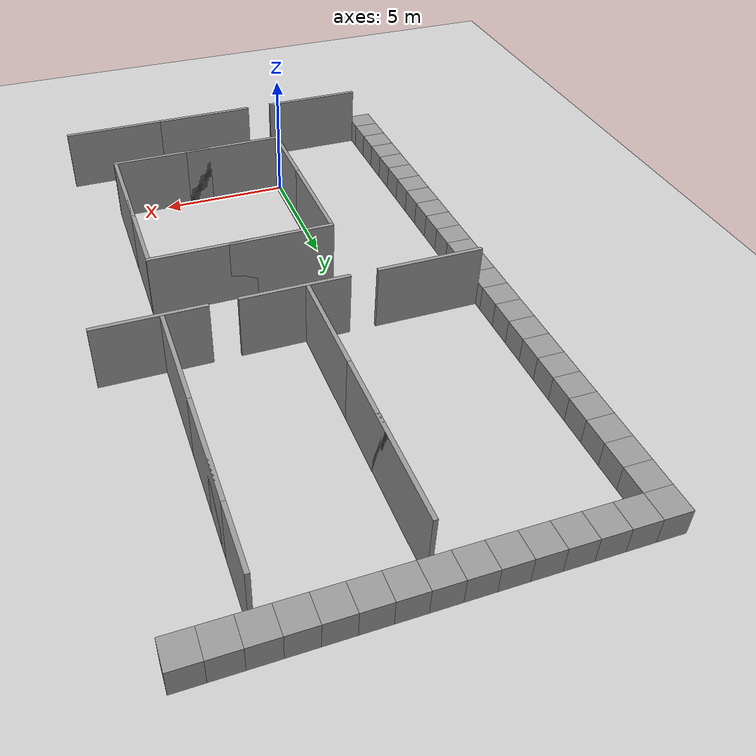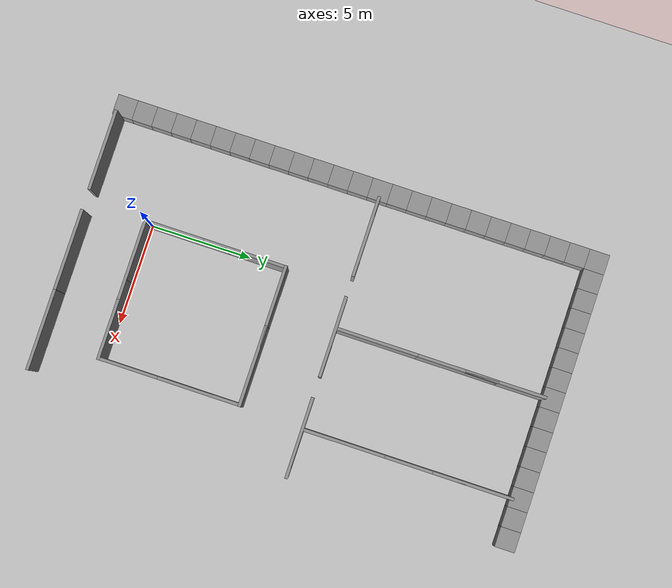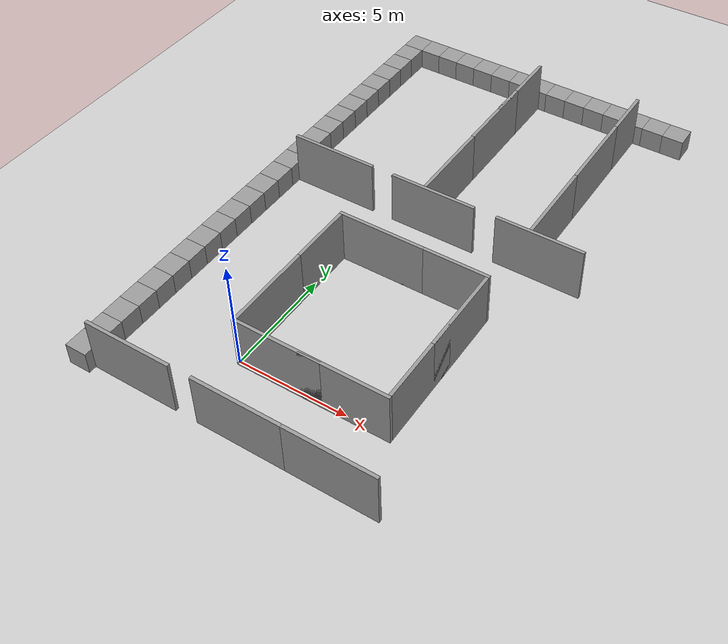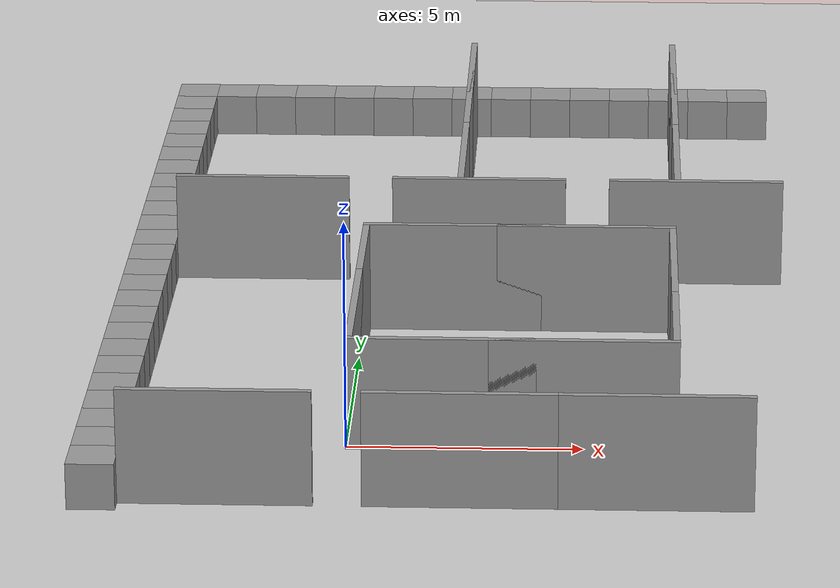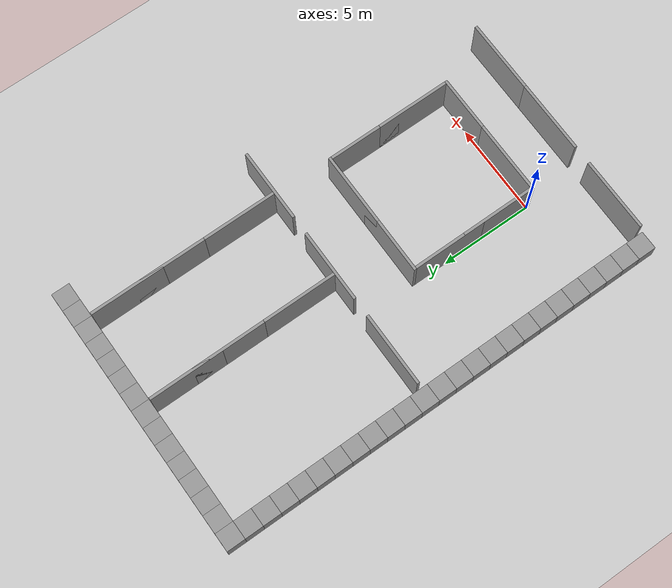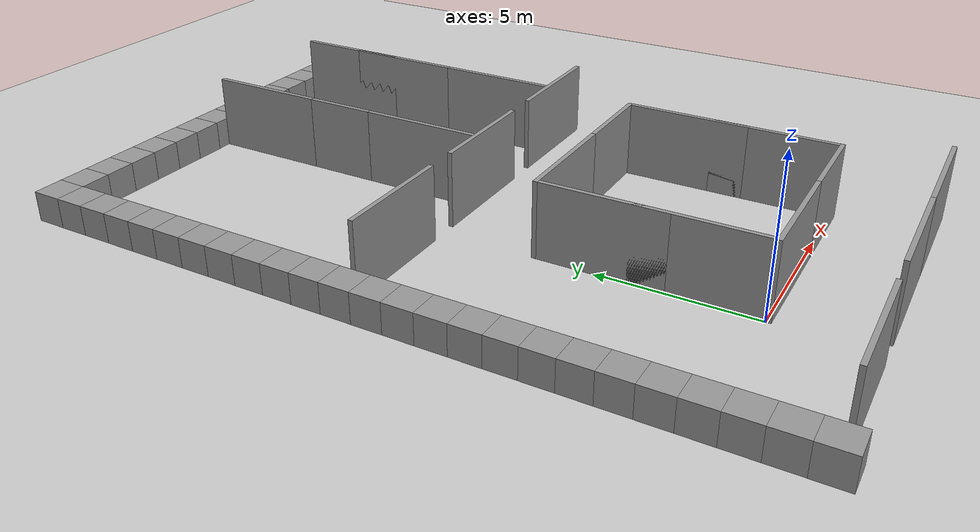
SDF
<sdf version="1.6">
 <world name="default">
  <model name="ground_plane">
   <static>1</static>
   <link name="link">
    <collision name="collision">
     <geometry><plane><normal>0 0 1</normal><size>100 100</size></plane></geometry>
     <surface><friction><ode><mu>100</mu><mu2>50</mu2></ode></friction></surface>
    </collision>
    <visual name="visual">
     <cast_shadows>0</cast_shadows>
     <geometry><plane><normal>0 0 1</normal><size>100 100</size></plane></geometry>
     <material>
      <script><uri>file://media/materials/scripts/gazebo.material</uri><name>Gazebo/Grey</name></script>
     </material>
    </visual>
    <velocity_decay><linear>0</linear><angular>0</angular></velocity_decay>
   </link>
  </model>
  <model name="unit_box_1">
   <pose>-5.0 5.0 0.5 0 0 0</pose>
   <static>1</static>
   <link name="link">
    <inertial>
     <mass>1</mass>
     <inertia><ixx>1</ixx><ixy>0</ixy><ixz>0</ixz><iyy>1</iyy><iyz>0</iyz><izz>1</izz></inertia>
    </inertial>
    <collision name="collision"><geometry><box><size>1 1 1</size></box></geometry></collision>
    <visual name="visual">
     <geometry><box><size>1 1 1</size></box></geometry>
     <material>
      <script><uri>file://media/materials/scripts/gazebo.material</uri><name>Gazebo/Grey</name></script>
     </material>
    </visual>
    <velocity_decay><linear>0</linear><angular>0</angular></velocity_decay>
   </link>
   <static>1</static>
  </model>
  <model name="unit_box_40">
   <pose>-5 4 0.5 0 0 0</pose>
   <static>1</static>
   <link name="link">
    <inertial>
     <mass>1</mass>
     <inertia><ixx>1</ixx><ixy>0</ixy><ixz>0</ixz><iyy>1</iyy><iyz>0</iyz><izz>1</izz></inertia>
    </inertial>
    <collision name="collision"><geometry><box><size>1 1 1</size></box></geometry></collision>
    <visual name="visual">
     <geometry><box><size>1 1 1</size></box></geometry>
     <material>
      <script><uri>file://media/materials/scripts/gazebo.material</uri><name>Gazebo/Grey</name></script>
     </material>
    </visual>
    <velocity_decay><linear>0</linear><angular>0</angular></velocity_decay>
   </link>
   <static>1</static>
  </model>
  <model name="unit_box_41">
   <pose>-5 3 0.5 0 0 0</pose>
   <static>1</static>
   <link name="link">
    <inertial>
     <mass>1</mass>
     <inertia><ixx>1</ixx><ixy>0</ixy><ixz>0</ixz><iyy>1</iyy><iyz>0</iyz><izz>1</izz></inertia>
    </inertial>
    <collision name="collision"><geometry><box><size>1 1 1</size></box></geometry></collision>
    <visual name="visual">
     <geometry><box><size>1 1 1</size></box></geometry>
     <material>
      <script><uri>file://media/materials/scripts/gazebo.material</uri><name>Gazebo/Grey</name></script>
     </material>
    </visual>
    <velocity_decay><linear>0</linear><angular>0</angular></velocity_decay>
   </link>
   <static>1</static>
  </model>
  <model name="unit_box_42">
   <pose>-5 2 0.5 0 0 0</pose>
   <static>1</static>
   <link name="link">
    <inertial>
     <mass>1</mass>
     <inertia><ixx>1</ixx><ixy>0</ixy><ixz>0</ixz><iyy>1</iyy><iyz>0</iyz><izz>1</izz></inertia>
    </inertial>
    <collision name="collision"><geometry><box><size>1 1 1</size></box></geometry></collision>
    <visual name="visual">
     <geometry><box><size>1 1 1</size></box></geometry>
     <material>
      <script><uri>file://media/materials/scripts/gazebo.material</uri><name>Gazebo/Grey</name></script>
     </material>
    </visual>
    <velocity_decay><linear>0</linear><angular>0</angular></velocity_decay>
   </link>
   <static>1</static>
  </model>
  <model name="unit_box_43">
   <pose>-5 1 0.5 0 0 0</pose>
   <static>1</static>
   <link name="link">
    <inertial>
     <mass>1</mass>
     <inertia><ixx>1</ixx><ixy>0</ixy><ixz>0</ixz><iyy>1</iyy><iyz>0</iyz><izz>1</izz></inertia>
    </inertial>
    <collision name="collision"><geometry><box><size>1 1 1</size></box></geometry></collision>
    <visual name="visual">
     <geometry><box><size>1 1 1</size></box></geometry>
     <material>
      <script><uri>file://media/materials/scripts/gazebo.material</uri><name>Gazebo/Grey</name></script>
     </material>
    </visual>
    <velocity_decay><linear>0</linear><angular>0</angular></velocity_decay>
   </link>
   <static>1</static>
  </model>
  <model name="unit_box_44">
   <pose>-5 0 0.5 0 0 0</pose>
   <static>1</static>
   <link name="link">
    <inertial>
     <mass>1</mass>
     <inertia><ixx>1</ixx><ixy>0</ixy><ixz>0</ixz><iyy>1</iyy><iyz>0</iyz><izz>1</izz></inertia>
    </inertial>
    <collision name="collision"><geometry><box><size>1 1 1</size></box></geometry></collision>
    <visual name="visual">
     <geometry><box><size>1 1 1</size></box></geometry>
     <material>
      <script><uri>file://media/materials/scripts/gazebo.material</uri><name>Gazebo/Grey</name></script>
     </material>
    </visual>
    <velocity_decay><linear>0</linear><angular>0</angular></velocity_decay>
   </link>
   <static>1</static>
  </model>
  <model name="unit_box_45">
   <pose>-5 -1 0.5 0 0 0</pose>
   <static>1</static>
   <link name="link">
    <inertial>
     <mass>1</mass>
     <inertia><ixx>1</ixx><ixy>0</ixy><ixz>0</ixz><iyy>1</iyy><iyz>0</iyz><izz>1</izz></inertia>
    </inertial>
    <collision name="collision"><geometry><box><size>1 1 1</size></box></geometry></collision>
    <visual name="visual">
     <geometry><box><size>1 1 1</size></box></geometry>
     <material>
      <script><uri>file://media/materials/scripts/gazebo.material</uri><name>Gazebo/Grey</name></script>
     </material>
    </visual>
    <velocity_decay><linear>0</linear><angular>0</angular></velocity_decay>
   </link>
   <static>1</static>
  </model>
  <model name="unit_box_46">
   <pose>-5 -2 0.5 0 0 0</pose>
   <static>1</static>
   <link name="link">
    <inertial>
     <mass>1</mass>
     <inertia><ixx>1</ixx><ixy>0</ixy><ixz>0</ixz><iyy>1</iyy><iyz>0</iyz><izz>1</izz></inertia>
    </inertial>
    <collision name="collision"><geometry><box><size>1 1 1</size></box></geometry></collision>
    <visual name="visual">
     <geometry><box><size>1 1 1</size></box></geometry>
     <material>
      <script><uri>file://media/materials/scripts/gazebo.material</uri><name>Gazebo/Grey</name></script>
     </material>
    </visual>
    <velocity_decay><linear>0</linear><angular>0</angular></velocity_decay>
   </link>
   <static>1</static>
  </model>
  <model name="unit_box_47">
   <pose>-5 -3 0.5 0 0 0</pose>
   <static>1</static>
   <link name="link">
    <inertial>
     <mass>1</mass>
     <inertia><ixx>1</ixx><ixy>0</ixy><ixz>0</ixz><iyy>1</iyy><iyz>0</iyz><izz>1</izz></inertia>
    </inertial>
    <collision name="collision"><geometry><box><size>1 1 1</size></box></geometry></collision>
    <visual name="visual">
     <geometry><box><size>1 1 1</size></box></geometry>
     <material>
      <script><uri>file://media/materials/scripts/gazebo.material</uri><name>Gazebo/Grey</name></script>
     </material>
    </visual>
    <velocity_decay><linear>0</linear><angular>0</angular></velocity_decay>
   </link>
   <static>1</static>
  </model>
  <model name="unit_box_61">
   <pose>-5 6 0.5 0 0 0</pose>
   <static>1</static>
   <link name="link">
    <inertial>
     <mass>1</mass>
     <inertia><ixx>1</ixx><ixy>0</ixy><ixz>0</ixz><iyy>1</iyy><iyz>0</iyz><izz>1</izz></inertia>
    </inertial>
    <collision name="collision"><geometry><box><size>1 1 1</size></box></geometry></collision>
    <visual name="visual">
     <geometry><box><size>1 1 1</size></box></geometry>
     <material>
      <script><uri>file://media/materials/scripts/gazebo.material</uri><name>Gazebo/Grey</name></script>
     </material>
    </visual>
    <velocity_decay><linear>0</linear><angular>0</angular></velocity_decay>
   </link>
   <static>1</static>
  </model>
  <model name="unit_box_67">
   <pose>-5 7 0.5 0 0 0</pose>
   <static>1</static>
   <link name="link">
    <inertial>
     <mass>1</mass>
     <inertia><ixx>1</ixx><ixy>0</ixy><ixz>0</ixz><iyy>1</iyy><iyz>0</iyz><izz>1</izz></inertia>
    </inertial>
    <collision name="collision"><geometry><box><size>1 1 1</size></box></geometry></collision>
    <visual name="visual">
     <geometry><box><size>1 1 1</size></box></geometry>
     <material>
      <script><uri>file://media/materials/scripts/gazebo.material</uri><name>Gazebo/Grey</name></script>
     </material>
    </visual>
    <velocity_decay><linear>0</linear><angular>0</angular></velocity_decay>
   </link>
   <static>1</static>
  </model>
  <model name="unit_box_68">
   <pose>-5.00001 7.99999 0.5 0 0 8e-06</pose>
   <static>1</static>
   <link name="link">
    <inertial>
     <mass>1</mass>
     <inertia><ixx>1</ixx><ixy>0</ixy><ixz>0</ixz><iyy>1</iyy><iyz>0</iyz><izz>1</izz></inertia>
    </inertial>
    <collision name="collision"><geometry><box><size>1 1 1</size></box></geometry></collision>
    <visual name="visual">
     <geometry><box><size>1 1 1</size></box></geometry>
     <material>
      <script><uri>file://media/materials/scripts/gazebo.material</uri><name>Gazebo/Grey</name></script>
     </material>
    </visual>
    <velocity_decay><linear>0</linear><angular>0</angular></velocity_decay>
   </link>
   <static>1</static>
  </model>
  <model name="unit_box_69">
   <pose>-5 8.99999 0.5 0 0 7e-06</pose>
   <static>1</static>
   <link name="link">
    <inertial>
     <mass>1</mass>
     <inertia><ixx>1</ixx><ixy>0</ixy><ixz>0</ixz><iyy>1</iyy><iyz>0</iyz><izz>1</izz></inertia>
    </inertial>
    <collision name="collision"><geometry><box><size>1 1 1</size></box></geometry></collision>
    <visual name="visual">
     <geometry><box><size>1 1 1</size></box></geometry>
     <material>
      <script><uri>file://media/materials/scripts/gazebo.material</uri><name>Gazebo/Grey</name></script>
     </material>
    </visual>
    <velocity_decay><linear>0</linear><angular>0</angular></velocity_decay>
   </link>
   <static>1</static>
  </model>
  <model name="unit_box_72">
   <pose>-5 10 0.5 0 0 0</pose>
   <static>1</static>
   <link name="link">
    <inertial>
     <mass>1</mass>
     <inertia><ixx>1</ixx><ixy>0</ixy><ixz>0</ixz><iyy>1</iyy><iyz>0</iyz><izz>1</izz></inertia>
    </inertial>
    <collision name="collision"><geometry><box><size>1 1 1</size></box></geometry></collision>
    <visual name="visual">
     <geometry><box><size>1 1 1</size></box></geometry>
     <material>
      <script><uri>file://media/materials/scripts/gazebo.material</uri><name>Gazebo/Grey</name></script>
     </material>
    </visual>
    <velocity_decay><linear>0</linear><angular>0</angular></velocity_decay>
   </link>
   <static>1</static>
  </model>
  <model name="unit_box_73">
   <pose>-5 11 0.5 0 0 0</pose>
   <static>1</static>
   <link name="link">
    <inertial>
     <mass>1</mass>
     <inertia><ixx>1</ixx><ixy>0</ixy><ixz>0</ixz><iyy>1</iyy><iyz>0</iyz><izz>1</izz></inertia>
    </inertial>
    <collision name="collision"><geometry><box><size>1 1 1</size></box></geometry></collision>
    <visual name="visual">
     <geometry><box><size>1 1 1</size></box></geometry>
     <material>
      <script><uri>file://media/materials/scripts/gazebo.material</uri><name>Gazebo/Grey</name></script>
     </material>
    </visual>
    <velocity_decay><linear>0</linear><angular>0</angular></velocity_decay>
   </link>
   <static>1</static>
  </model>
  <model name="unit_box_74">
   <pose>-5.00001 12 0.5 0 0 8e-06</pose>
   <static>1</static>
   <link name="link">
    <inertial>
     <mass>1</mass>
     <inertia><ixx>1</ixx><ixy>0</ixy><ixz>0</ixz><iyy>1</iyy><iyz>0</iyz><izz>1</izz></inertia>
    </inertial>
    <collision name="collision"><geometry><box><size>1 1 1</size></box></geometry></collision>
    <visual name="visual">
     <geometry><box><size>1 1 1</size></box></geometry>
     <material>
      <script><uri>file://media/materials/scripts/gazebo.material</uri><name>Gazebo/Grey</name></script>
     </material>
    </visual>
    <velocity_decay><linear>0</linear><angular>0</angular></velocity_decay>
   </link>
   <static>1</static>
  </model>
  <model name="unit_box_75">
   <pose>-5 13 0.5 0 0 5e-06</pose>
   <static>1</static>
   <link name="link">
    <inertial>
     <mass>1</mass>
     <inertia><ixx>1</ixx><ixy>0</ixy><ixz>0</ixz><iyy>1</iyy><iyz>0</iyz><izz>1</izz></inertia>
    </inertial>
    <collision name="collision"><geometry><box><size>1 1 1</size></box></geometry></collision>
    <visual name="visual">
     <geometry><box><size>1 1 1</size></box></geometry>
     <material>
      <script><uri>file://media/materials/scripts/gazebo.material</uri><name>Gazebo/Grey</name></script>
     </material>
    </visual>
    <velocity_decay><linear>0</linear><angular>0</angular></velocity_decay>
   </link>
   <static>1</static>
  </model>
  <model name="unit_box_76">
   <pose>-5 14 0.5 0 0 6e-06</pose>
   <static>1</static>
   <link name="link">
    <inertial>
     <mass>1</mass>
     <inertia><ixx>1</ixx><ixy>0</ixy><ixz>0</ixz><iyy>1</iyy><iyz>0</iyz><izz>1</izz></inertia>
    </inertial>
    <collision name="collision"><geometry><box><size>1 1 1</size></box></geometry></collision>
    <visual name="visual">
     <geometry><box><size>1 1 1</size></box></geometry>
     <material>
      <script><uri>file://media/materials/scripts/gazebo.material</uri><name>Gazebo/Grey</name></script>
     </material>
    </visual>
    <velocity_decay><linear>0</linear><angular>0</angular></velocity_decay>
   </link>
   <static>1</static>
  </model>
  <model name="unit_box_77">
   <pose>-4.99999 15 0.5 0 0 7e-06</pose>
   <static>1</static>
   <link name="link">
    <inertial>
     <mass>1</mass>
     <inertia><ixx>1</ixx><ixy>0</ixy><ixz>0</ixz><iyy>1</iyy><iyz>0</iyz><izz>1</izz></inertia>
    </inertial>
    <collision name="collision"><geometry><box><size>1 1 1</size></box></geometry></collision>
    <visual name="visual">
     <geometry><box><size>1 1 1</size></box></geometry>
     <material>
      <script><uri>file://media/materials/scripts/gazebo.material</uri><name>Gazebo/Grey</name></script>
     </material>
    </visual>
    <velocity_decay><linear>0</linear><angular>0</angular></velocity_decay>
   </link>
   <static>1</static>
  </model>
  <model name="unit_box_78">
   <pose>-5 16 0.5 0 0 7e-06</pose>
   <static>1</static>
   <link name="link">
    <inertial>
     <mass>1</mass>
     <inertia><ixx>1</ixx><ixy>0</ixy><ixz>0</ixz><iyy>1</iyy><iyz>0</iyz><izz>1</izz></inertia>
    </inertial>
    <collision name="collision"><geometry><box><size>1 1 1</size></box></geometry></collision>
    <visual name="visual">
     <geometry><box><size>1 1 1</size></box></geometry>
     <material>
      <script><uri>file://media/materials/scripts/gazebo.material</uri><name>Gazebo/Grey</name></script>
     </material>
    </visual>
    <velocity_decay><linear>0</linear><angular>0</angular></velocity_decay>
   </link>
   <static>1</static>
  </model>
  <model name="unit_box_79">
   <pose>-4.99997 17 0.5 0 0 6e-06</pose>
   <static>1</static>
   <link name="link">
    <inertial>
     <mass>1</mass>
     <inertia><ixx>1</ixx><ixy>0</ixy><ixz>0</ixz><iyy>1</iyy><iyz>0</iyz><izz>1</izz></inertia>
    </inertial>
    <collision name="collision"><geometry><box><size>1 1 1</size></box></geometry></collision>
    <visual name="visual">
     <geometry><box><size>1 1 1</size></box></geometry>
     <material>
      <script><uri>file://media/materials/scripts/gazebo.material</uri><name>Gazebo/Grey</name></script>
     </material>
    </visual>
    <velocity_decay><linear>0</linear><angular>0</angular></velocity_decay>
   </link>
   <static>1</static>
  </model>
  <model name="unit_box_80">
   <pose>-5 18 0.5 0 0 0</pose>
   <static>1</static>
   <link name="link">
    <inertial>
     <mass>1</mass>
     <inertia><ixx>1</ixx><ixy>0</ixy><ixz>0</ixz><iyy>1</iyy><iyz>0</iyz><izz>1</izz></inertia>
    </inertial>
    <collision name="collision"><geometry><box><size>1 1 1</size></box></geometry></collision>
    <visual name="visual">
     <geometry><box><size>1 1 1</size></box></geometry>
     <material>
      <script><uri>file://media/materials/scripts/gazebo.material</uri><name>Gazebo/Grey</name></script>
     </material>
    </visual>
    <velocity_decay><linear>0</linear><angular>0</angular></velocity_decay>
   </link>
   <static>1</static>
  </model>
  <model name="unit_box_96">
   <pose>-5 19 0.5 0 0 0</pose>
   <static>1</static>
   <link name="link">
    <inertial>
     <mass>1</mass>
     <inertia><ixx>1</ixx><ixy>0</ixy><ixz>0</ixz><iyy>1</iyy><iyz>0</iyz><izz>1</izz></inertia>
    </inertial>
    <collision name="collision"><geometry><box><size>1 1 1</size></box></geometry></collision>
    <visual name="visual">
     <geometry><box><size>1 1 1</size></box></geometry>
     <material>
      <script><uri>file://media/materials/scripts/gazebo.material</uri><name>Gazebo/Grey</name></script>
     </material>
    </visual>
    <velocity_decay><linear>0</linear><angular>0</angular></velocity_decay>
   </link>
   <static>1</static>
  </model>
  <model name="unit_box_97">
   <pose>-4.99997 20 0.5 0 0 1e-06</pose>
   <static>1</static>
   <link name="link">
    <inertial>
     <mass>1</mass>
     <inertia><ixx>1</ixx><ixy>0</ixy><ixz>0</ixz><iyy>1</iyy><iyz>0</iyz><izz>1</izz></inertia>
    </inertial>
    <collision name="collision"><geometry><box><size>1 1 1</size></box></geometry></collision>
    <visual name="visual">
     <geometry><box><size>1 1 1</size></box></geometry>
     <material>
      <script><uri>file://media/materials/scripts/gazebo.material</uri><name>Gazebo/Grey</name></script>
     </material>
    </visual>
    <velocity_decay><linear>0</linear><angular>0</angular></velocity_decay>
   </link>
   <static>1</static>
  </model>
  <model name="unit_box_98">
   <pose>-5.00001 21 0.5 0 0 0</pose>
   <static>1</static>
   <link name="link">
    <inertial>
     <mass>1</mass>
     <inertia><ixx>1</ixx><ixy>0</ixy><ixz>0</ixz><iyy>1</iyy><iyz>0</iyz><izz>1</izz></inertia>
    </inertial>
    <collision name="collision"><geometry><box><size>1 1 1</size></box></geometry></collision>
    <visual name="visual">
     <geometry><box><size>1 1 1</size></box></geometry>
     <material>
      <script><uri>file://media/materials/scripts/gazebo.material</uri><name>Gazebo/Grey</name></script>
     </material>
    </visual>
    <velocity_decay><linear>0</linear><angular>0</angular></velocity_decay>
   </link>
   <static>1</static>
  </model>
  <model name="unit_box_99">
   <pose>-4.00001 21 0.5 0 0 -1e-06</pose>
   <static>1</static>
   <link name="link">
    <inertial>
     <mass>1</mass>
     <inertia><ixx>1</ixx><ixy>0</ixy><ixz>0</ixz><iyy>1</iyy><iyz>0</iyz><izz>1</izz></inertia>
    </inertial>
    <collision name="collision"><geometry><box><size>1 1 1</size></box></geometry></collision>
    <visual name="visual">
     <geometry><box><size>1 1 1</size></box></geometry>
     <material>
      <script><uri>file://media/materials/scripts/gazebo.material</uri><name>Gazebo/Grey</name></script>
     </material>
    </visual>
    <velocity_decay><linear>0</linear><angular>0</angular></velocity_decay>
   </link>
   <static>1</static>
  </model>
  <model name="unit_box_100">
   <pose>-3.0 21 0.5 0 0 0</pose>
   <static>1</static>
   <link name="link">
    <inertial>
     <mass>1</mass>
     <inertia><ixx>1</ixx><ixy>0</ixy><ixz>0</ixz><iyy>1</iyy><iyz>0</iyz><izz>1</izz></inertia>
    </inertial>
    <collision name="collision"><geometry><box><size>1 1 1</size></box></geometry></collision>
    <visual name="visual">
     <geometry><box><size>1 1 1</size></box></geometry>
     <material>
      <script><uri>file://media/materials/scripts/gazebo.material</uri><name>Gazebo/Grey</name></script>
     </material>
    </visual>
    <velocity_decay><linear>0</linear><angular>0</angular></velocity_decay>
   </link>
   <static>1</static>
  </model>
  <model name="unit_box_101">
   <pose>-2.0 21 0.5 0 0 0</pose>
   <static>1</static>
   <link name="link">
    <inertial>
     <mass>1</mass>
     <inertia><ixx>1</ixx><ixy>0</ixy><ixz>0</ixz><iyy>1</iyy><iyz>0</iyz><izz>1</izz></inertia>
    </inertial>
    <collision name="collision"><geometry><box><size>1 1 1</size></box></geometry></collision>
    <visual name="visual">
     <geometry><box><size>1 1 1</size></box></geometry>
     <material>
      <script><uri>file://media/materials/scripts/gazebo.material</uri><name>Gazebo/Grey</name></script>
     </material>
    </visual>
    <velocity_decay><linear>0</linear><angular>0</angular></velocity_decay>
   </link>
   <static>1</static>
  </model>
  <model name="unit_box_102">
   <pose>-1.0 21 0.5 0 0 0</pose>
   <static>1</static>
   <link name="link">
    <inertial>
     <mass>1</mass>
     <inertia><ixx>1</ixx><ixy>0</ixy><ixz>0</ixz><iyy>1</iyy><iyz>0</iyz><izz>1</izz></inertia>
    </inertial>
    <collision name="collision"><geometry><box><size>1 1 1</size></box></geometry></collision>
    <visual name="visual">
     <geometry><box><size>1 1 1</size></box></geometry>
     <material>
      <script><uri>file://media/materials/scripts/gazebo.material</uri><name>Gazebo/Grey</name></script>
     </material>
    </visual>
    <velocity_decay><linear>0</linear><angular>0</angular></velocity_decay>
   </link>
   <static>1</static>
  </model>
  <model name="unit_box_103">
   <pose>-1e-05 21 0.5 0 0 0</pose>
   <static>1</static>
   <link name="link">
    <inertial>
     <mass>1</mass>
     <inertia><ixx>1</ixx><ixy>0</ixy><ixz>0</ixz><iyy>1</iyy><iyz>0</iyz><izz>1</izz></inertia>
    </inertial>
    <collision name="collision"><geometry><box><size>1 1 1</size></box></geometry></collision>
    <visual name="visual">
     <geometry><box><size>1 1 1</size></box></geometry>
     <material>
      <script><uri>file://media/materials/scripts/gazebo.material</uri><name>Gazebo/Grey</name></script>
     </material>
    </visual>
    <velocity_decay><linear>0</linear><angular>0</angular></velocity_decay>
   </link>
   <static>1</static>
  </model>
  <model name="unit_box_104">
   <pose>1 21 0.5 0 0 0</pose>
   <static>1</static>
   <link name="link">
    <inertial>
     <mass>1</mass>
     <inertia><ixx>1</ixx><ixy>0</ixy><ixz>0</ixz><iyy>1</iyy><iyz>0</iyz><izz>1</izz></inertia>
    </inertial>
    <collision name="collision"><geometry><box><size>1 1 1</size></box></geometry></collision>
    <visual name="visual">
     <geometry><box><size>1 1 1</size></box></geometry>
     <material>
      <script><uri>file://media/materials/scripts/gazebo.material</uri><name>Gazebo/Grey</name></script>
     </material>
    </visual>
    <velocity_decay><linear>0</linear><angular>0</angular></velocity_decay>
   </link>
   <static>1</static>
  </model>
  <model name="unit_box_105">
   <pose>1.99999 21 0.5 0 0 0</pose>
   <static>1</static>
   <link name="link">
    <inertial>
     <mass>1</mass>
     <inertia><ixx>1</ixx><ixy>0</ixy><ixz>0</ixz><iyy>1</iyy><iyz>0</iyz><izz>1</izz></inertia>
    </inertial>
    <collision name="collision"><geometry><box><size>1 1 1</size></box></geometry></collision>
    <visual name="visual">
     <geometry><box><size>1 1 1</size></box></geometry>
     <material>
      <script><uri>file://media/materials/scripts/gazebo.material</uri><name>Gazebo/Grey</name></script>
     </material>
    </visual>
    <velocity_decay><linear>0</linear><angular>0</angular></velocity_decay>
   </link>
   <static>1</static>
  </model>
  <model name="unit_box_106">
   <pose>2.99999 21 0.5 0 0 1e-06</pose>
   <static>1</static>
   <link name="link">
    <inertial>
     <mass>1</mass>
     <inertia><ixx>1</ixx><ixy>0</ixy><ixz>0</ixz><iyy>1</iyy><iyz>0</iyz><izz>1</izz></inertia>
    </inertial>
    <collision name="collision"><geometry><box><size>1 1 1</size></box></geometry></collision>
    <visual name="visual">
     <geometry><box><size>1 1 1</size></box></geometry>
     <material>
      <script><uri>file://media/materials/scripts/gazebo.material</uri><name>Gazebo/Grey</name></script>
     </material>
    </visual>
    <velocity_decay><linear>0</linear><angular>0</angular></velocity_decay>
   </link>
   <static>1</static>
  </model>
  <model name="unit_box_107">
   <pose>3.99999 21 0.5 0 0 2e-06</pose>
   <static>1</static>
   <link name="link">
    <inertial>
     <mass>1</mass>
     <inertia><ixx>1</ixx><ixy>0</ixy><ixz>0</ixz><iyy>1</iyy><iyz>0</iyz><izz>1</izz></inertia>
    </inertial>
    <collision name="collision"><geometry><box><size>1 1 1</size></box></geometry></collision>
    <visual name="visual">
     <geometry><box><size>1 1 1</size></box></geometry>
     <material>
      <script><uri>file://media/materials/scripts/gazebo.material</uri><name>Gazebo/Grey</name></script>
     </material>
    </visual>
    <velocity_decay><linear>0</linear><angular>0</angular></velocity_decay>
   </link>
   <static>1</static>
  </model>
  <model name="unit_box_108">
   <pose>5 21 0.5 0 0 3e-06</pose>
   <static>1</static>
   <link name="link">
    <inertial>
     <mass>1</mass>
     <inertia><ixx>1</ixx><ixy>0</ixy><ixz>0</ixz><iyy>1</iyy><iyz>0</iyz><izz>1</izz></inertia>
    </inertial>
    <collision name="collision"><geometry><box><size>1 1 1</size></box></geometry></collision>
    <visual name="visual">
     <geometry><box><size>1 1 1</size></box></geometry>
     <material>
      <script><uri>file://media/materials/scripts/gazebo.material</uri><name>Gazebo/Grey</name></script>
     </material>
    </visual>
    <velocity_decay><linear>0</linear><angular>0</angular></velocity_decay>
   </link>
   <static>1</static>
  </model>
  <model name="unit_box_109">
   <pose>6 20.9999 0.5 0 0 3e-06</pose>
   <static>1</static>
   <link name="link">
    <inertial>
     <mass>1</mass>
     <inertia><ixx>1</ixx><ixy>0</ixy><ixz>0</ixz><iyy>1</iyy><iyz>0</iyz><izz>1</izz></inertia>
    </inertial>
    <collision name="collision"><geometry><box><size>1 1 1</size></box></geometry></collision>
    <visual name="visual">
     <geometry><box><size>1 1 1</size></box></geometry>
     <material>
      <script><uri>file://media/materials/scripts/gazebo.material</uri><name>Gazebo/Grey</name></script>
     </material>
    </visual>
    <velocity_decay><linear>0</linear><angular>0</angular></velocity_decay>
   </link>
   <static>1</static>
  </model>
  <model name="unit_box_110">
   <pose>7 21 0.5 0 0 4e-06</pose>
   <static>1</static>
   <link name="link">
    <inertial>
     <mass>1</mass>
     <inertia><ixx>1</ixx><ixy>0</ixy><ixz>0</ixz><iyy>1</iyy><iyz>0</iyz><izz>1</izz></inertia>
    </inertial>
    <collision name="collision"><geometry><box><size>1 1 1</size></box></geometry></collision>
    <visual name="visual">
     <geometry><box><size>1 1 1</size></box></geometry>
     <material>
      <script><uri>file://media/materials/scripts/gazebo.material</uri><name>Gazebo/Grey</name></script>
     </material>
    </visual>
    <velocity_decay><linear>0</linear><angular>0</angular></velocity_decay>
   </link>
   <static>1</static>
  </model>
  <model name="unit_box_111">
   <pose>8 21 0.5 0 0 3e-06</pose>
   <static>1</static>
   <link name="link">
    <inertial>
     <mass>1</mass>
     <inertia><ixx>1</ixx><ixy>0</ixy><ixz>0</ixz><iyy>1</iyy><iyz>0</iyz><izz>1</izz></inertia>
    </inertial>
    <collision name="collision"><geometry><box><size>1 1 1</size></box></geometry></collision>
    <visual name="visual">
     <geometry><box><size>1 1 1</size></box></geometry>
     <material>
      <script><uri>file://media/materials/scripts/gazebo.material</uri><name>Gazebo/Grey</name></script>
     </material>
    </visual>
    <velocity_decay><linear>0</linear><angular>0</angular></velocity_decay>
   </link>
   <static>1</static>
  </model>
  <model name="unit_box_112">
   <pose>9 21 0.5 0 0 3e-06</pose>
   <static>1</static>
   <link name="link">
    <inertial>
     <mass>1</mass>
     <inertia><ixx>1</ixx><ixy>0</ixy><ixz>0</ixz><iyy>1</iyy><iyz>0</iyz><izz>1</izz></inertia>
    </inertial>
    <collision name="collision"><geometry><box><size>1 1 1</size></box></geometry></collision>
    <visual name="visual">
     <geometry><box><size>1 1 1</size></box></geometry>
     <material>
      <script><uri>file://media/materials/scripts/gazebo.material</uri><name>Gazebo/Grey</name></script>
     </material>
    </visual>
    <velocity_decay><linear>0</linear><angular>0</angular></velocity_decay>
   </link>
   <static>1</static>
  </model>
  <model name="simple_wall_4x0.15">
   <pose>-2.5 -3.075 0 0 0 0</pose>
   <link name="Wall_0">
    <collision name="Wall_0_Collision">
     <geometry><box><size>4 0.15 2.5</size></box></geometry>
     <pose>0 0 1.25 0 0 0</pose>
    </collision>
    <visual name="Wall_0_Visual">
     <pose>0 0 1.25 0 0 0</pose>
     <geometry><box><size>4 0.15 2.5</size></box></geometry>
     <material>
      <script><uri>file://media/materials/scripts/gazebo.material</uri><name>Gazebo/Grey</name></script>
      <ambient>1 1 1 1</ambient>
     </material>
    </visual>
   </link>
   <static>1</static>
  </model>
  <model name="simple_wall_4x0.15_clone">
   <pose>2.5 -3.075 0 0 0 0</pose>
   <link name="Wall_0">
    <collision name="Wall_0_Collision">
     <geometry><box><size>4 0.15 2.5</size></box></geometry>
     <pose>0 0 1.25 0 0 0</pose>
    </collision>
    <visual name="Wall_0_Visual">
     <pose>0 0 1.25 0 0 0</pose>
     <geometry><box><size>4 0.15 2.5</size></box></geometry>
     <material>
      <script><uri>file://media/materials/scripts/gazebo.material</uri><name>Gazebo/Grey</name></script>
      <ambient>1 1 1 1</ambient>
     </material>
    </visual>
   </link>
   <static>1</static>
  </model>
  <model name="simple_wall_4x0.15_clone_0">
   <pose>6.5 -3.075 0 0 0 0</pose>
   <link name="Wall_0">
    <collision name="Wall_0_Collision">
     <geometry><box><size>4 0.15 2.5</size></box></geometry>
     <pose>0 0 1.25 0 0 0</pose>
    </collision>
    <visual name="Wall_0_Visual">
     <pose>0 0 1.25 0 0 0</pose>
     <geometry><box><size>4 0.15 2.5</size></box></geometry>
     <material>
      <script><uri>file://media/materials/scripts/gazebo.material</uri><name>Gazebo/Grey</name></script>
      <ambient>1 1 1 1</ambient>
     </material>
    </visual>
   </link>
   <static>1</static>
  </model>
  <model name="simple_wall_4x0.15_clone_4">
   <pose>-2.5 10.075 0 0 0 0</pose>
   <link name="Wall_0">
    <collision name="Wall_0_Collision">
     <geometry><box><size>4 0.15 2.5</size></box></geometry>
     <pose>0 0 1.25 0 0 0</pose>
    </collision>
    <visual name="Wall_0_Visual">
     <pose>0 0 1.25 0 0 0</pose>
     <geometry><box><size>4 0.15 2.5</size></box></geometry>
     <material>
      <script><uri>file://media/materials/scripts/gazebo.material</uri><name>Gazebo/Grey</name></script>
      <ambient>1 1 1 1</ambient>
     </material>
    </visual>
   </link>
   <static>1</static>
  </model>
  <model name="simple_wall_4x0.15_clone_5">
   <pose>2.5 10.075 0 0 0 0</pose>
   <link name="Wall_0">
    <collision name="Wall_0_Collision">
     <geometry><box><size>4 0.15 2.5</size></box></geometry>
     <pose>0 0 1.25 0 0 0</pose>
    </collision>
    <visual name="Wall_0_Visual">
     <pose>0 0 1.25 0 0 0</pose>
     <geometry><box><size>4 0.15 2.5</size></box></geometry>
     <material>
      <script><uri>file://media/materials/scripts/gazebo.material</uri><name>Gazebo/Grey</name></script>
      <ambient>1 1 1 1</ambient>
     </material>
    </visual>
   </link>
   <static>1</static>
  </model>
  <model name="simple_wall_4x0.15_clone_6">
   <pose>7.5 10.075 0 0 0 0</pose>
   <link name="Wall_0">
    <collision name="Wall_0_Collision">
     <geometry><box><size>4 0.15 2.5</size></box></geometry>
     <pose>0 0 1.25 0 0 0</pose>
    </collision>
    <visual name="Wall_0_Visual">
     <pose>0 0 1.25 0 0 0</pose>
     <geometry><box><size>4 0.15 2.5</size></box></geometry>
     <material>
      <script><uri>file://media/materials/scripts/gazebo.material</uri><name>Gazebo/Grey</name></script>
      <ambient>1 1 1 1</ambient>
     </material>
    </visual>
   </link>
   <static>1</static>
  </model>
  <model name="simple_wall_4x0.15_clone_3_clone_0_clone_6">
   <pose>2.075 12.15 0 0 0 -1.5707963267948</pose>
   <link name="Wall_0">
    <collision name="Wall_0_Collision">
     <geometry><box><size>4 0.15 2.5</size></box></geometry>
     <pose>0 0 1.25 0 0 0</pose>
    </collision>
    <visual name="Wall_0_Visual">
     <pose>0 0 1.25 0 0 0</pose>
     <geometry><box><size>4 0.15 2.5</size></box></geometry>
     <material>
      <script><uri>file://media/materials/scripts/gazebo.material</uri><name>Gazebo/Grey</name></script>
      <ambient>1 1 1 1</ambient>
     </material>
    </visual>
   </link>
   <static>1</static>
  </model>
  <model name="simple_wall_4x0.15_clone_3_clone_0_clone_7">
   <pose>2.075 16.15 0 0 0 -1.5707963267948</pose>
   <link name="Wall_0">
    <collision name="Wall_0_Collision">
     <geometry><box><size>4 0.15 2.5</size></box></geometry>
     <pose>0 0 1.25 0 0 0</pose>
    </collision>
    <visual name="Wall_0_Visual">
     <pose>0 0 1.25 0 0 0</pose>
     <geometry><box><size>4 0.15 2.5</size></box></geometry>
     <material>
      <script><uri>file://media/materials/scripts/gazebo.material</uri><name>Gazebo/Grey</name></script>
      <ambient>1 1 1 1</ambient>
     </material>
    </visual>
   </link>
   <static>1</static>
  </model>
  <model name="simple_wall_4x0.15_clone_3_clone_0_clone_8">
   <pose>2.075 18.5 0 0 0 -1.5707963267948</pose>
   <link name="Wall_0">
    <collision name="Wall_0_Collision">
     <geometry><box><size>4 0.15 2.5</size></box></geometry>
     <pose>0 0 1.25 0 0 0</pose>
    </collision>
    <visual name="Wall_0_Visual">
     <pose>0 0 1.25 0 0 0</pose>
     <geometry><box><size>4 0.15 2.5</size></box></geometry>
     <material>
      <script><uri>file://media/materials/scripts/gazebo.material</uri><name>Gazebo/Grey</name></script>
      <ambient>1 1 1 1</ambient>
     </material>
    </visual>
   </link>
   <static>1</static>
  </model>
  <model name="simple_wall_4x0.15_clone_3_clone_0_clone_9">
   <pose>7.075 18.5 0 0 0 -1.5707963267948</pose>
   <link name="Wall_0">
    <collision name="Wall_0_Collision">
     <geometry><box><size>4 0.15 2.5</size></box></geometry>
     <pose>0 0 1.25 0 0 0</pose>
    </collision>
    <visual name="Wall_0_Visual">
     <pose>0 0 1.25 0 0 0</pose>
     <geometry><box><size>4 0.15 2.5</size></box></geometry>
     <material>
      <script><uri>file://media/materials/scripts/gazebo.material</uri><name>Gazebo/Grey</name></script>
      <ambient>1 1 1 1</ambient>
     </material>
    </visual>
   </link>
   <static>1</static>
  </model>
  <model name="simple_wall_4x0.15_clone_3_clone_0_clone_10">
   <pose>7.075 12.15 0 0 0 -1.5707963267948</pose>
   <link name="Wall_0">
    <collision name="Wall_0_Collision">
     <geometry><box><size>4 0.15 2.5</size></box></geometry>
     <pose>0 0 1.25 0 0 0</pose>
    </collision>
    <visual name="Wall_0_Visual">
     <pose>0 0 1.25 0 0 0</pose>
     <geometry><box><size>4 0.15 2.5</size></box></geometry>
     <material>
      <script><uri>file://media/materials/scripts/gazebo.material</uri><name>Gazebo/Grey</name></script>
      <ambient>1 1 1 1</ambient>
     </material>
    </visual>
   </link>
   <static>1</static>
  </model>
  <model name="simple_wall_4x0.15_clone_3_clone_0_clone_11">
   <pose>7.075 16.15 0 0 0 -1.5707963267948</pose>
   <link name="Wall_0">
    <collision name="Wall_0_Collision">
     <geometry><box><size>4 0.15 2.5</size></box></geometry>
     <pose>0 0 1.25 0 0 0</pose>
    </collision>
    <visual name="Wall_0_Visual">
     <pose>0 0 1.25 0 0 0</pose>
     <geometry><box><size>4 0.15 2.5</size></box></geometry>
     <material>
      <script><uri>file://media/materials/scripts/gazebo.material</uri><name>Gazebo/Grey</name></script>
      <ambient>1 1 1 1</ambient>
     </material>
    </visual>
   </link>
   <static>1</static>
  </model>
  <model name="simple_wall_4x0.15_clone_10">
   <pose>2 -0.075 0 0 0 0</pose>
   <link name="Wall_0">
    <collision name="Wall_0_Collision">
     <geometry><box><size>4 0.15 2.5</size></box></geometry>
     <pose>0 0 1.25 0 0 0</pose>
    </collision>
    <visual name="Wall_0_Visual">
     <pose>0 0 1.25 0 0 0</pose>
     <geometry><box><size>4 0.15 2.5</size></box></geometry>
     <material>
      <script><uri>file://media/materials/scripts/gazebo.material</uri><name>Gazebo/Grey</name></script>
      <ambient>1 1 1 1</ambient>
     </material>
    </visual>
   </link>
   <static>1</static>
  </model>
  <model name="simple_wall_4x0.15_clone_11">
   <pose>5 -0.075 0 0 0 0</pose>
   <link name="Wall_0">
    <collision name="Wall_0_Collision">
     <geometry><box><size>4 0.15 2.5</size></box></geometry>
     <pose>0 0 1.25 0 0 0</pose>
    </collision>
    <visual name="Wall_0_Visual">
     <pose>0 0 1.25 0 0 0</pose>
     <geometry><box><size>4 0.15 2.5</size></box></geometry>
     <material>
      <script><uri>file://media/materials/scripts/gazebo.material</uri><name>Gazebo/Grey</name></script>
      <ambient>1 1 1 1</ambient>
     </material>
    </visual>
   </link>
   <static>1</static>
  </model>
  <model name="simple_wall_4x0.15_clone_12">
   <pose>5 6.925 0 0 0 0</pose>
   <link name="Wall_0">
    <collision name="Wall_0_Collision">
     <geometry><box><size>4 0.15 2.5</size></box></geometry>
     <pose>0 0 1.25 0 0 0</pose>
    </collision>
    <visual name="Wall_0_Visual">
     <pose>0 0 1.25 0 0 0</pose>
     <geometry><box><size>4 0.15 2.5</size></box></geometry>
     <material>
      <script><uri>file://media/materials/scripts/gazebo.material</uri><name>Gazebo/Grey</name></script>
      <ambient>1 1 1 1</ambient>
     </material>
    </visual>
   </link>
   <static>1</static>
  </model>
  <model name="simple_wall_4x0.15_clone_13">
   <pose>2 6.925 0 0 0 0</pose>
   <link name="Wall_0">
    <collision name="Wall_0_Collision">
     <geometry><box><size>4 0.15 2.5</size></box></geometry>
     <pose>0 0 1.25 0 0 0</pose>
    </collision>
    <visual name="Wall_0_Visual">
     <pose>0 0 1.25 0 0 0</pose>
     <geometry><box><size>4 0.15 2.5</size></box></geometry>
     <material>
      <script><uri>file://media/materials/scripts/gazebo.material</uri><name>Gazebo/Grey</name></script>
      <ambient>1 1 1 1</ambient>
     </material>
    </visual>
   </link>
   <static>1</static>
  </model>
  <model name="simple_wall_4x0.15_clone_3_clone_0_clone_17">
   <pose>0.075 2.0 0 0 0 -1.5707963267948</pose>
   <link name="Wall_0">
    <collision name="Wall_0_Collision">
     <geometry><box><size>4 0.15 2.5</size></box></geometry>
     <pose>0 0 1.25 0 0 0</pose>
    </collision>
    <visual name="Wall_0_Visual">
     <pose>0 0 1.25 0 0 0</pose>
     <geometry><box><size>4 0.15 2.5</size></box></geometry>
     <material>
      <script><uri>file://media/materials/scripts/gazebo.material</uri><name>Gazebo/Grey</name></script>
      <ambient>1 1 1 1</ambient>
     </material>
    </visual>
   </link>
   <static>1</static>
  </model>
  <model name="simple_wall_4x0.15_clone_3_clone_0_clone_18">
   <pose>0.075 4.85 0 0 0 -1.5707963267948</pose>
   <link name="Wall_0">
    <collision name="Wall_0_Collision">
     <geometry><box><size>4 0.15 2.5</size></box></geometry>
     <pose>0 0 1.25 0 0 0</pose>
    </collision>
    <visual name="Wall_0_Visual">
     <pose>0 0 1.25 0 0 0</pose>
     <geometry><box><size>4 0.15 2.5</size></box></geometry>
     <material>
      <script><uri>file://media/materials/scripts/gazebo.material</uri><name>Gazebo/Grey</name></script>
      <ambient>1 1 1 1</ambient>
     </material>
    </visual>
   </link>
   <static>1</static>
  </model>
  <model name="simple_wall_4x0.15_clone_3_clone_0_clone_19">
   <pose>6.925 4.85 0 0 0 -1.5707963267948</pose>
   <link name="Wall_0">
    <collision name="Wall_0_Collision">
     <geometry><box><size>4 0.15 2.5</size></box></geometry>
     <pose>0 0 1.25 0 0 0</pose>
    </collision>
    <visual name="Wall_0_Visual">
     <pose>0 0 1.25 0 0 0</pose>
     <geometry><box><size>4 0.15 2.5</size></box></geometry>
     <material>
      <script><uri>file://media/materials/scripts/gazebo.material</uri><name>Gazebo/Grey</name></script>
      <ambient>1 1 1 1</ambient>
     </material>
    </visual>
   </link>
   <static>1</static>
  </model>
  <model name="simple_wall_4x0.15_clone_3_clone_0_clone_20">
   <pose>6.925 2.0 0 0 0 -1.5707963267948</pose>
   <link name="Wall_0">
    <collision name="Wall_0_Collision">
     <geometry><box><size>4 0.15 2.5</size></box></geometry>
     <pose>0 0 1.25 0 0 0</pose>
    </collision>
    <visual name="Wall_0_Visual">
     <pose>0 0 1.25 0 0 0</pose>
     <geometry><box><size>4 0.15 2.5</size></box></geometry>
     <material>
      <script><uri>file://media/materials/scripts/gazebo.material</uri><name>Gazebo/Grey</name></script>
      <ambient>1 1 1 1</ambient>
     </material>
    </visual>
   </link>
   <static>1</static>
  </model>
 </world>
</sdf>
